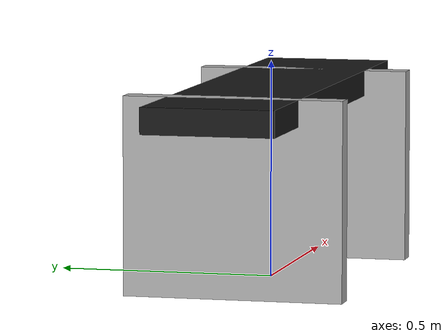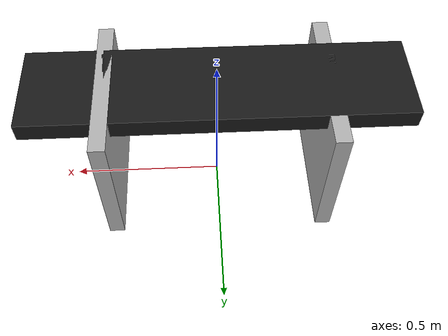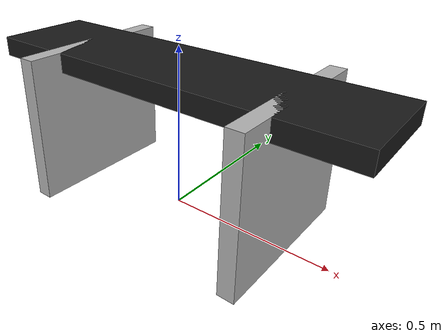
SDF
<?xml version="1.0" ?>
<sdf version="1.7">
  <model name="commercial_flat_bench">
    <!-- Set to true if you want the bench fixed to the world -->
    <static>false</static>

    <link name="bench">
      <!-- Inertial properties for the whole assembly
           (approximated as a 1.20 x 0.50 x 0.45 m box, mass 25 kg). -->
      <inertial>
        <mass>25.0</mass>
        <!-- Pose of the inertia frame relative to the link frame (at bench COM). -->
        <pose>0 0 0 0 0 0</pose>
        <inertia>
          <!-- About link frame at COM; units kg·m^2 -->
          <ixx>0.943</ixx>
          <ixy>0.0</ixy>
          <ixz>0.0</ixz>
          <iyy>3.422</iyy>
          <iyz>0.0</iyz>
          <izz>3.523</izz>
        </inertia>
      </inertial>

      <!-- ========== PAD (visual + collision) ========== -->
      <visual name="pad_visual">
        <!-- Center of pad box is at z = 0.42 m (top at 0.45 m) -->
        <pose>0 0 0.42 0 0 0</pose>
        <geometry>
          <box><size>1.20 0.30 0.06</size></box>
        </geometry>
        <material>
          <ambient>0.1 0.1 0.1 1</ambient>
          <diffuse>0.1 0.1 0.1 1</diffuse>
          <specular>0.05 0.05 0.05 1</specular>
        </material>
      </visual>

      <collision name="pad_collision">
        <pose>0 0 0.42 0 0 0</pose>
        <geometry>
          <box><size>1.20 0.30 0.06</size></box>
        </geometry>
        <surface>
          <friction>
            <ode>
              <!-- Rubber-ish pad -->
              <mu>0.9</mu>
              <mu2>0.9</mu2>
            </ode>
          </friction>
          <contact>
            <ode>
              <kp>2.0e6</kp>
              <kd>1.0</kd>
              <min_depth>0.001</min_depth>
              <max_vel>0.1</max_vel>
            </ode>
          </contact>
        </surface>
      </collision>

      <!-- ========== LEFT LEG (visual + collision) ========== -->
      <!-- A simple rectangular frame under the left half -->
      <visual name="left_leg_visual">
        <!-- Place ~0.35 m forward along x, centered at z=0.225 (half of 0.45 m leg height) -->
        <pose>0.35 0 0.225 0 0 0</pose>
        <geometry>
          <box><size>0.05 0.50 0.45</size></box>
        </geometry>
        <material>
          <ambient>0.6 0.6 0.6 1</ambient>
          <diffuse>0.7 0.7 0.7 1</diffuse>
        </material>
      </visual>

      <collision name="left_leg_collision">
        <pose>0.35 0 0.225 0 0 0</pose>
        <geometry>
          <box><size>0.05 0.50 0.45</size></box>
        </geometry>
        <surface>
          <friction>
            <ode>
              <!-- Rubber feet on the floor -->
              <mu>1.0</mu>
              <mu2>1.0</mu2>
            </ode>
          </friction>
          <contact>
            <ode>
              <kp>2.0e6</kp>
              <kd>1.0</kd>
              <min_depth>0.001</min_depth>
              <max_vel>0.1</max_vel>
            </ode>
          </contact>
        </surface>
      </collision>

      <!-- ========== RIGHT LEG (visual + collision) ========== -->
      <visual name="right_leg_visual">
        <pose>-0.35 0 0.225 0 0 0</pose>
        <geometry>
          <box><size>0.05 0.50 0.45</size></box>
        </geometry>
        <material>
          <ambient>0.6 0.6 0.6 1</ambient>
          <diffuse>0.7 0.7 0.7 1</diffuse>
        </material>
      </visual>

      <collision name="right_leg_collision">
        <pose>-0.35 0 0.225 0 0 0</pose>
        <geometry>
          <box><size>0.05 0.50 0.45</size></box>
        </geometry>
        <surface>
          <friction>
            <ode>
              <mu>1.0</mu>
              <mu2>1.0</mu2>
            </ode>
          </friction>
          <contact>
            <ode>
              <kp>2.0e6</kp>
              <kd>1.0</kd>
              <min_depth>0.001</min_depth>
              <max_vel>0.1</max_vel>
            </ode>
          </contact>
        </surface>
      </collision>

    </link>

    <!-- Optional: an explicit model frame at the bench COM -->
    <frame name="bench_com" attached_to="bench">
      <pose>0 0 0 0 0 0</pose>
    </frame>
  </model>
</sdf>
